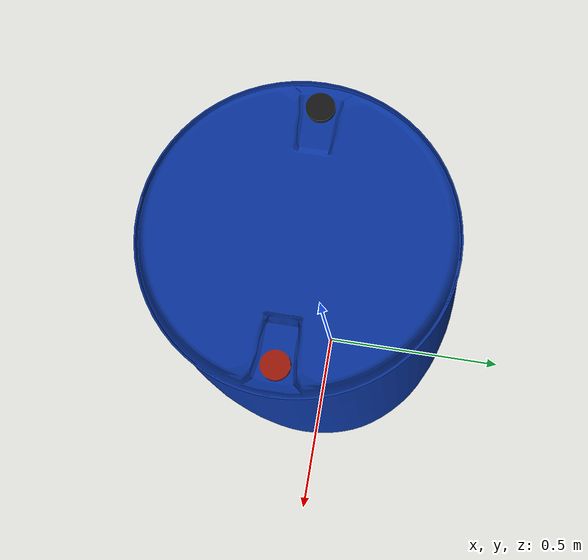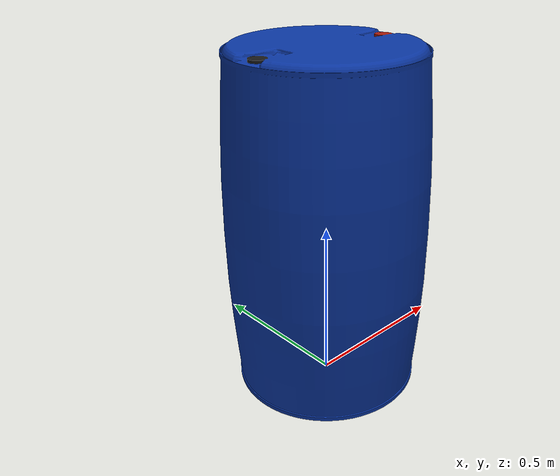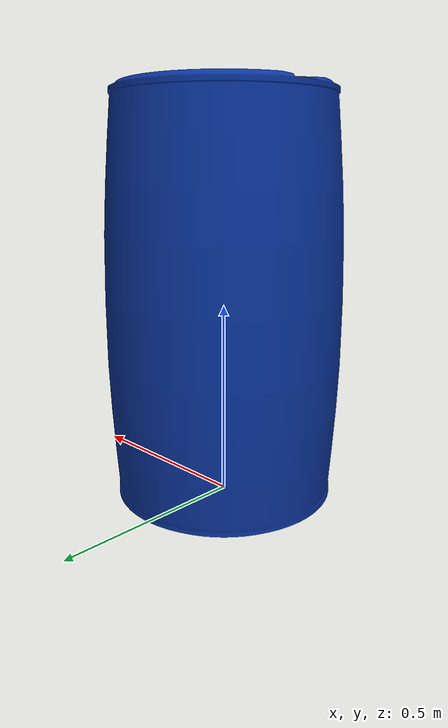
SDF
<?xml version="1.0"?>
<sdf version="1.4">
  <model name="barrel3_105">
    <static>true</static>
    <link name="link">
      <collision name="collision">
        <geometry>
          <mesh>
             <uri>model://barrel3_105/models/barrel105.dae</uri>
          </mesh>
        </geometry>
      </collision>
      <visual name="visual">
         <geometry>
          <mesh>
						<uri>model://barrel3_105/models/barrel105.dae</uri>
          </mesh>
        </geometry>
      </visual>
    </link>
  </model>
</sdf>
